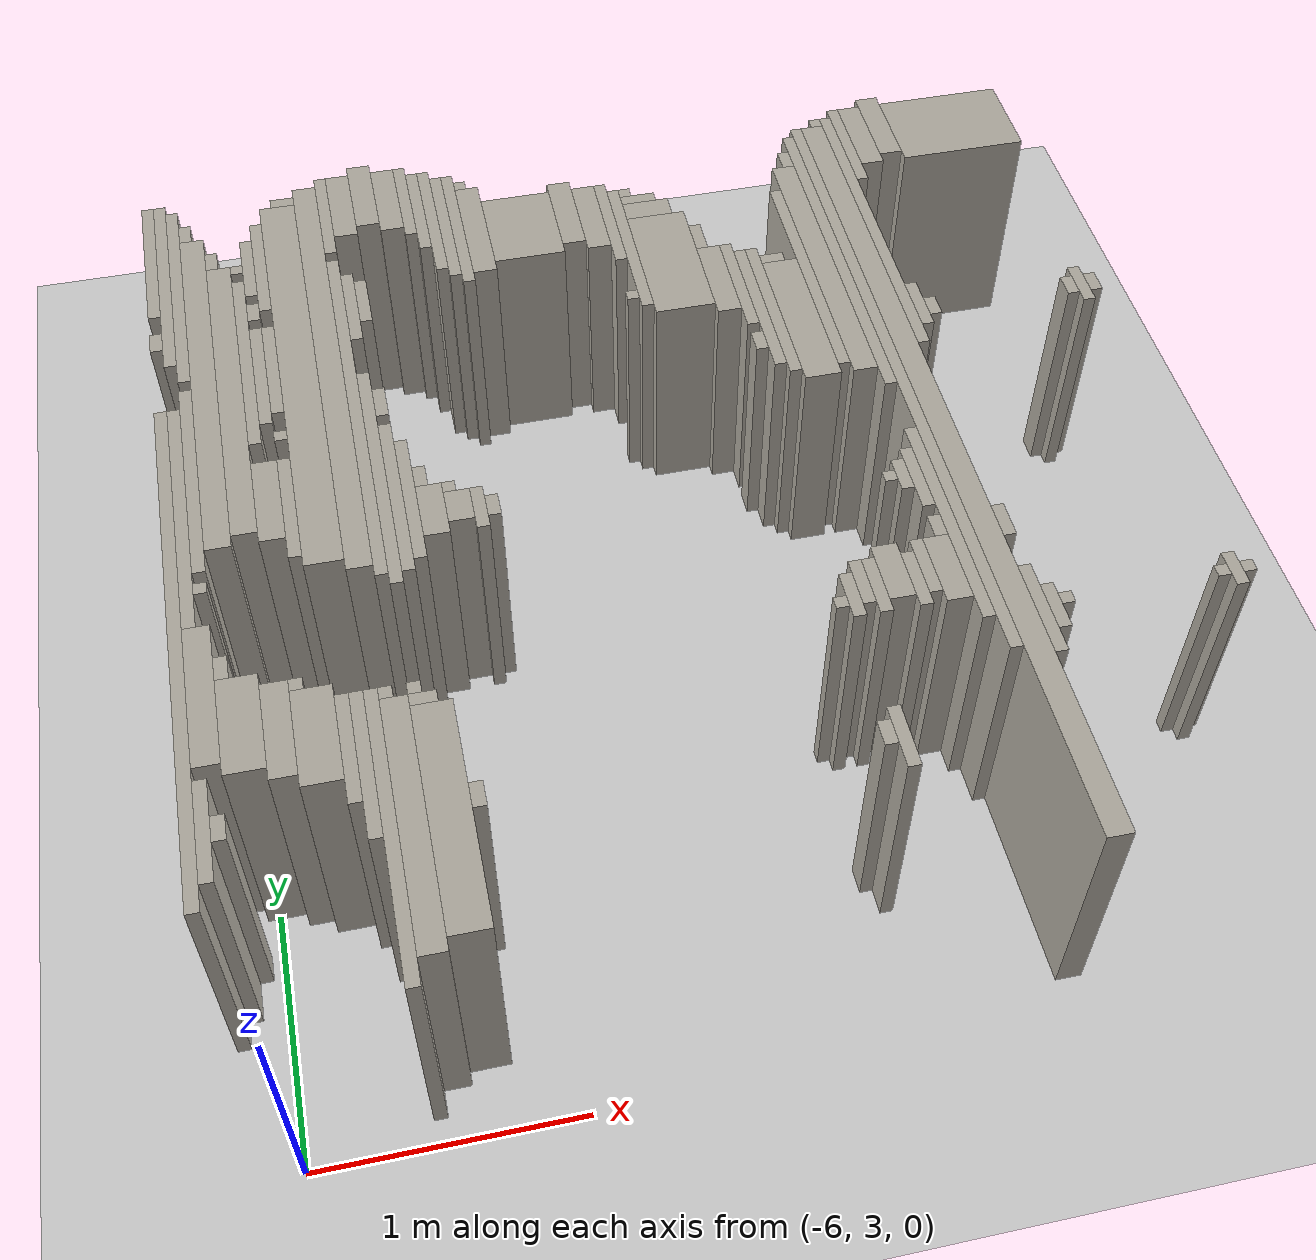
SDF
<sdf version="1.6">
 <world name="fr079_office">
  <include><uri>model://sun</uri></include>
  <include><uri>model://ground_plane</uri></include>
  <model name="fr079_office_walls">
   <static>true</static>
   <link name="w2423">
    <pose>-5.523 3.669 0.500 0 0 0</pose>
    <collision name="c"><geometry><box><size>0.050 1.150 1.000</size></box></geometry></collision>
    <visual name="v">
     <geometry><box><size>0.050 1.150 1.000</size></box></geometry>
     <material><ambient>0.68 0.66 0.62 1</ambient><diffuse>0.68 0.66 0.62 1</diffuse></material>
    </visual>
   </link>
   <link name="w2444">
    <pose>-3.198 5.044 0.500 0 0 0</pose>
    <collision name="c"><geometry><box><size>0.100 3.800 1.000</size></box></geometry></collision>
    <visual name="v">
     <geometry><box><size>0.100 3.800 1.000</size></box></geometry>
     <material><ambient>0.68 0.66 0.62 1</ambient><diffuse>0.68 0.66 0.62 1</diffuse></material>
    </visual>
   </link>
   <link name="w2455">
    <pose>-5.448 3.694 0.500 0 0 0</pose>
    <collision name="c"><geometry><box><size>0.100 1.000 1.000</size></box></geometry></collision>
    <visual name="v">
     <geometry><box><size>0.100 1.000 1.000</size></box></geometry>
     <material><ambient>0.68 0.66 0.62 1</ambient><diffuse>0.68 0.66 0.62 1</diffuse></material>
    </visual>
   </link>
   <link name="w2472">
    <pose>-5.323 3.694 0.500 0 0 0</pose>
    <collision name="c"><geometry><box><size>0.150 0.900 1.000</size></box></geometry></collision>
    <visual name="v">
     <geometry><box><size>0.150 0.900 1.000</size></box></geometry>
     <material><ambient>0.68 0.66 0.62 1</ambient><diffuse>0.68 0.66 0.62 1</diffuse></material>
    </visual>
   </link>
   <link name="w2527">
    <pose>-6.173 4.619 0.500 0 0 0</pose>
    <collision name="c"><geometry><box><size>0.050 2.250 1.000</size></box></geometry></collision>
    <visual name="v">
     <geometry><box><size>0.050 2.250 1.000</size></box></geometry>
     <material><ambient>0.68 0.66 0.62 1</ambient><diffuse>0.68 0.66 0.62 1</diffuse></material>
    </visual>
   </link>
   <link name="w2538">
    <pose>-3.773 3.669 0.500 0 0 0</pose>
    <collision name="c"><geometry><box><size>0.050 0.250 1.000</size></box></geometry></collision>
    <visual name="v">
     <geometry><box><size>0.050 0.250 1.000</size></box></geometry>
     <material><ambient>0.68 0.66 0.62 1</ambient><diffuse>0.68 0.66 0.62 1</diffuse></material>
    </visual>
   </link>
   <link name="w2544">
    <pose>-6.123 3.794 0.500 0 0 0</pose>
    <collision name="c"><geometry><box><size>0.050 0.400 1.000</size></box></geometry></collision>
    <visual name="v">
     <geometry><box><size>0.050 0.400 1.000</size></box></geometry>
     <material><ambient>0.68 0.66 0.62 1</ambient><diffuse>0.68 0.66 0.62 1</diffuse></material>
    </visual>
   </link>
   <link name="w2551">
    <pose>-5.573 3.944 0.500 0 0 0</pose>
    <collision name="c"><geometry><box><size>0.050 0.600 1.000</size></box></geometry></collision>
    <visual name="v">
     <geometry><box><size>0.050 0.600 1.000</size></box></geometry>
     <material><ambient>0.68 0.66 0.62 1</ambient><diffuse>0.68 0.66 0.62 1</diffuse></material>
    </visual>
   </link>
   <link name="w2552">
    <pose>-3.823 3.694 0.500 0 0 0</pose>
    <collision name="c"><geometry><box><size>0.050 0.100 1.000</size></box></geometry></collision>
    <visual name="v">
     <geometry><box><size>0.050 0.100 1.000</size></box></geometry>
     <material><ambient>0.68 0.66 0.62 1</ambient><diffuse>0.68 0.66 0.62 1</diffuse></material>
    </visual>
   </link>
   <link name="w2560">
    <pose>-5.223 3.744 0.500 0 0 0</pose>
    <collision name="c"><geometry><box><size>0.050 0.100 1.000</size></box></geometry></collision>
    <visual name="v">
     <geometry><box><size>0.050 0.100 1.000</size></box></geometry>
     <material><ambient>0.68 0.66 0.62 1</ambient><diffuse>0.68 0.66 0.62 1</diffuse></material>
    </visual>
   </link>
   <link name="w2566">
    <pose>-6.073 3.794 0.500 0 0 0</pose>
    <collision name="c"><geometry><box><size>0.050 0.100 1.000</size></box></geometry></collision>
    <visual name="v">
     <geometry><box><size>0.050 0.100 1.000</size></box></geometry>
     <material><ambient>0.68 0.66 0.62 1</ambient><diffuse>0.68 0.66 0.62 1</diffuse></material>
    </visual>
   </link>
   <link name="w2574">
    <pose>-5.623 4.019 0.500 0 0 0</pose>
    <collision name="c"><geometry><box><size>0.050 0.450 1.000</size></box></geometry></collision>
    <visual name="v">
     <geometry><box><size>0.050 0.450 1.000</size></box></geometry>
     <material><ambient>0.68 0.66 0.62 1</ambient><diffuse>0.68 0.66 0.62 1</diffuse></material>
    </visual>
   </link>
   <link name="w2591">
    <pose>-5.723 4.094 0.500 0 0 0</pose>
    <collision name="c"><geometry><box><size>0.150 0.400 1.000</size></box></geometry></collision>
    <visual name="v">
     <geometry><box><size>0.150 0.400 1.000</size></box></geometry>
     <material><ambient>0.68 0.66 0.62 1</ambient><diffuse>0.68 0.66 0.62 1</diffuse></material>
    </visual>
   </link>
   <link name="w2592">
    <pose>-3.123 4.094 0.500 0 0 0</pose>
    <collision name="c"><geometry><box><size>0.050 0.400 1.000</size></box></geometry></collision>
    <visual name="v">
     <geometry><box><size>0.050 0.400 1.000</size></box></geometry>
     <material><ambient>0.68 0.66 0.62 1</ambient><diffuse>0.68 0.66 0.62 1</diffuse></material>
    </visual>
   </link>
   <link name="w2602">
    <pose>-5.848 4.144 0.500 0 0 0</pose>
    <collision name="c"><geometry><box><size>0.100 0.400 1.000</size></box></geometry></collision>
    <visual name="v">
     <geometry><box><size>0.100 0.400 1.000</size></box></geometry>
     <material><ambient>0.68 0.66 0.62 1</ambient><diffuse>0.68 0.66 0.62 1</diffuse></material>
    </visual>
   </link>
   <link name="w2603">
    <pose>-3.273 5.444 0.500 0 0 0</pose>
    <collision name="c"><geometry><box><size>0.050 3.000 1.000</size></box></geometry></collision>
    <visual name="v">
     <geometry><box><size>0.050 3.000 1.000</size></box></geometry>
     <material><ambient>0.68 0.66 0.62 1</ambient><diffuse>0.68 0.66 0.62 1</diffuse></material>
    </visual>
   </link>
   <link name="w2611">
    <pose>-5.973 4.194 0.500 0 0 0</pose>
    <collision name="c"><geometry><box><size>0.150 0.400 1.000</size></box></geometry></collision>
    <visual name="v">
     <geometry><box><size>0.150 0.400 1.000</size></box></geometry>
     <material><ambient>0.68 0.66 0.62 1</ambient><diffuse>0.68 0.66 0.62 1</diffuse></material>
    </visual>
   </link>
   <link name="w2612">
    <pose>-3.073 4.094 0.500 0 0 0</pose>
    <collision name="c"><geometry><box><size>0.050 0.200 1.000</size></box></geometry></collision>
    <visual name="v">
     <geometry><box><size>0.050 0.200 1.000</size></box></geometry>
     <material><ambient>0.68 0.66 0.62 1</ambient><diffuse>0.68 0.66 0.62 1</diffuse></material>
    </visual>
   </link>
   <link name="w2622">
    <pose>-6.098 4.344 0.500 0 0 0</pose>
    <collision name="c"><geometry><box><size>0.100 0.600 1.000</size></box></geometry></collision>
    <visual name="v">
     <geometry><box><size>0.100 0.600 1.000</size></box></geometry>
     <material><ambient>0.68 0.66 0.62 1</ambient><diffuse>0.68 0.66 0.62 1</diffuse></material>
    </visual>
   </link>
   <link name="w2623">
    <pose>-2.373 4.119 0.500 0 0 0</pose>
    <collision name="c"><geometry><box><size>0.050 0.150 1.000</size></box></geometry></collision>
    <visual name="v">
     <geometry><box><size>0.050 0.150 1.000</size></box></geometry>
     <material><ambient>0.68 0.66 0.62 1</ambient><diffuse>0.68 0.66 0.62 1</diffuse></material>
    </visual>
   </link>
   <link name="w2633">
    <pose>-3.323 4.569 0.500 0 0 0</pose>
    <collision name="c"><geometry><box><size>0.050 0.950 1.000</size></box></geometry></collision>
    <visual name="v">
     <geometry><box><size>0.050 0.950 1.000</size></box></geometry>
     <material><ambient>0.68 0.66 0.62 1</ambient><diffuse>0.68 0.66 0.62 1</diffuse></material>
    </visual>
   </link>
   <link name="w2634">
    <pose>-3.023 4.119 0.500 0 0 0</pose>
    <collision name="c"><geometry><box><size>0.050 0.050 1.000</size></box></geometry></collision>
    <visual name="v">
     <geometry><box><size>0.050 0.050 1.000</size></box></geometry>
     <material><ambient>0.68 0.66 0.62 1</ambient><diffuse>0.68 0.66 0.62 1</diffuse></material>
    </visual>
   </link>
   <link name="w2635">
    <pose>-2.423 4.119 0.500 0 0 0</pose>
    <collision name="c"><geometry><box><size>0.050 0.050 1.000</size></box></geometry></collision>
    <visual name="v">
     <geometry><box><size>0.050 0.050 1.000</size></box></geometry>
     <material><ambient>0.68 0.66 0.62 1</ambient><diffuse>0.68 0.66 0.62 1</diffuse></material>
    </visual>
   </link>
   <link name="w2636">
    <pose>-2.323 4.119 0.500 0 0 0</pose>
    <collision name="c"><geometry><box><size>0.050 0.050 1.000</size></box></geometry></collision>
    <visual name="v">
     <geometry><box><size>0.050 0.050 1.000</size></box></geometry>
     <material><ambient>0.68 0.66 0.62 1</ambient><diffuse>0.68 0.66 0.62 1</diffuse></material>
    </visual>
   </link>
   <link name="w2651">
    <pose>-5.348 4.169 0.500 0 0 0</pose>
    <collision name="c"><geometry><box><size>0.100 0.050 1.000</size></box></geometry></collision>
    <visual name="v">
     <geometry><box><size>0.100 0.050 1.000</size></box></geometry>
     <material><ambient>0.68 0.66 0.62 1</ambient><diffuse>0.68 0.66 0.62 1</diffuse></material>
    </visual>
   </link>
   <link name="w2661">
    <pose>-5.473 4.219 0.500 0 0 0</pose>
    <collision name="c"><geometry><box><size>0.050 0.050 1.000</size></box></geometry></collision>
    <visual name="v">
     <geometry><box><size>0.050 0.050 1.000</size></box></geometry>
     <material><ambient>0.68 0.66 0.62 1</ambient><diffuse>0.68 0.66 0.62 1</diffuse></material>
    </visual>
   </link>
   <link name="w2662">
    <pose>-5.373 4.219 0.500 0 0 0</pose>
    <collision name="c"><geometry><box><size>0.050 0.050 1.000</size></box></geometry></collision>
    <visual name="v">
     <geometry><box><size>0.050 0.050 1.000</size></box></geometry>
     <material><ambient>0.68 0.66 0.62 1</ambient><diffuse>0.68 0.66 0.62 1</diffuse></material>
    </visual>
   </link>
   <link name="w2663">
    <pose>-3.773 4.294 0.500 0 0 0</pose>
    <collision name="c"><geometry><box><size>0.050 0.200 1.000</size></box></geometry></collision>
    <visual name="v">
     <geometry><box><size>0.050 0.200 1.000</size></box></geometry>
     <material><ambient>0.68 0.66 0.62 1</ambient><diffuse>0.68 0.66 0.62 1</diffuse></material>
    </visual>
   </link>
   <link name="w2664">
    <pose>-3.673 4.319 0.500 0 0 0</pose>
    <collision name="c"><geometry><box><size>0.050 0.250 1.000</size></box></geometry></collision>
    <visual name="v">
     <geometry><box><size>0.050 0.250 1.000</size></box></geometry>
     <material><ambient>0.68 0.66 0.62 1</ambient><diffuse>0.68 0.66 0.62 1</diffuse></material>
    </visual>
   </link>
   <link name="w2665">
    <pose>-3.523 4.319 0.500 0 0 0</pose>
    <collision name="c"><geometry><box><size>0.050 0.250 1.000</size></box></geometry></collision>
    <visual name="v">
     <geometry><box><size>0.050 0.250 1.000</size></box></geometry>
     <material><ambient>0.68 0.66 0.62 1</ambient><diffuse>0.68 0.66 0.62 1</diffuse></material>
    </visual>
   </link>
   <link name="w2666">
    <pose>-3.398 4.344 0.500 0 0 0</pose>
    <collision name="c"><geometry><box><size>0.100 0.300 1.000</size></box></geometry></collision>
    <visual name="v">
     <geometry><box><size>0.100 0.300 1.000</size></box></geometry>
     <material><ambient>0.68 0.66 0.62 1</ambient><diffuse>0.68 0.66 0.62 1</diffuse></material>
    </visual>
   </link>
   <link name="w2674">
    <pose>-3.823 4.269 0.500 0 0 0</pose>
    <collision name="c"><geometry><box><size>0.050 0.050 1.000</size></box></geometry></collision>
    <visual name="v">
     <geometry><box><size>0.050 0.050 1.000</size></box></geometry>
     <material><ambient>0.68 0.66 0.62 1</ambient><diffuse>0.68 0.66 0.62 1</diffuse></material>
    </visual>
   </link>
   <link name="w2675">
    <pose>-3.723 4.344 0.500 0 0 0</pose>
    <collision name="c"><geometry><box><size>0.050 0.200 1.000</size></box></geometry></collision>
    <visual name="v">
     <geometry><box><size>0.050 0.200 1.000</size></box></geometry>
     <material><ambient>0.68 0.66 0.62 1</ambient><diffuse>0.68 0.66 0.62 1</diffuse></material>
    </visual>
   </link>
   <link name="w2676">
    <pose>-3.598 4.369 0.500 0 0 0</pose>
    <collision name="c"><geometry><box><size>0.100 0.250 1.000</size></box></geometry></collision>
    <visual name="v">
     <geometry><box><size>0.100 0.250 1.000</size></box></geometry>
     <material><ambient>0.68 0.66 0.62 1</ambient><diffuse>0.68 0.66 0.62 1</diffuse></material>
    </visual>
   </link>
   <link name="w2677">
    <pose>-3.473 4.369 0.500 0 0 0</pose>
    <collision name="c"><geometry><box><size>0.050 0.250 1.000</size></box></geometry></collision>
    <visual name="v">
     <geometry><box><size>0.050 0.250 1.000</size></box></geometry>
     <material><ambient>0.68 0.66 0.62 1</ambient><diffuse>0.68 0.66 0.62 1</diffuse></material>
    </visual>
   </link>
   <link name="w2682">
    <pose>-5.773 4.319 0.500 0 0 0</pose>
    <collision name="c"><geometry><box><size>0.050 0.050 1.000</size></box></geometry></collision>
    <visual name="v">
     <geometry><box><size>0.050 0.050 1.000</size></box></geometry>
     <material><ambient>0.68 0.66 0.62 1</ambient><diffuse>0.68 0.66 0.62 1</diffuse></material>
    </visual>
   </link>
   <link name="w2697">
    <pose>-6.023 4.444 0.500 0 0 0</pose>
    <collision name="c"><geometry><box><size>0.050 0.100 1.000</size></box></geometry></collision>
    <visual name="v">
     <geometry><box><size>0.050 0.100 1.000</size></box></geometry>
     <material><ambient>0.68 0.66 0.62 1</ambient><diffuse>0.68 0.66 0.62 1</diffuse></material>
    </visual>
   </link>
   <link name="w2704">
    <pose>-3.123 4.519 0.500 0 0 0</pose>
    <collision name="c"><geometry><box><size>0.050 0.150 1.000</size></box></geometry></collision>
    <visual name="v">
     <geometry><box><size>0.050 0.150 1.000</size></box></geometry>
     <material><ambient>0.68 0.66 0.62 1</ambient><diffuse>0.68 0.66 0.62 1</diffuse></material>
    </visual>
   </link>
   <link name="w2712">
    <pose>-3.373 4.544 0.500 0 0 0</pose>
    <collision name="c"><geometry><box><size>0.050 0.100 1.000</size></box></geometry></collision>
    <visual name="v">
     <geometry><box><size>0.050 0.100 1.000</size></box></geometry>
     <material><ambient>0.68 0.66 0.62 1</ambient><diffuse>0.68 0.66 0.62 1</diffuse></material>
    </visual>
   </link>
   <link name="w2740">
    <pose>-6.123 5.194 0.500 0 0 0</pose>
    <collision name="c"><geometry><box><size>0.050 1.100 1.000</size></box></geometry></collision>
    <visual name="v">
     <geometry><box><size>0.050 1.100 1.000</size></box></geometry>
     <material><ambient>0.68 0.66 0.62 1</ambient><diffuse>0.68 0.66 0.62 1</diffuse></material>
    </visual>
   </link>
   <link name="w2741">
    <pose>-3.373 4.794 0.500 0 0 0</pose>
    <collision name="c"><geometry><box><size>0.050 0.300 1.000</size></box></geometry></collision>
    <visual name="v">
     <geometry><box><size>0.050 0.300 1.000</size></box></geometry>
     <material><ambient>0.68 0.66 0.62 1</ambient><diffuse>0.68 0.66 0.62 1</diffuse></material>
    </visual>
   </link>
   <link name="w2748">
    <pose>-5.373 5.244 0.500 0 0 0</pose>
    <collision name="c"><geometry><box><size>0.050 1.100 1.000</size></box></geometry></collision>
    <visual name="v">
     <geometry><box><size>0.050 1.100 1.000</size></box></geometry>
     <material><ambient>0.68 0.66 0.62 1</ambient><diffuse>0.68 0.66 0.62 1</diffuse></material>
    </visual>
   </link>
   <link name="w2753">
    <pose>-5.423 5.619 0.500 0 0 0</pose>
    <collision name="c"><geometry><box><size>0.050 1.750 1.000</size></box></geometry></collision>
    <visual name="v">
     <geometry><box><size>0.050 1.750 1.000</size></box></geometry>
     <material><ambient>0.68 0.66 0.62 1</ambient><diffuse>0.68 0.66 0.62 1</diffuse></material>
    </visual>
   </link>
   <link name="w2754">
    <pose>-5.323 5.119 0.500 0 0 0</pose>
    <collision name="c"><geometry><box><size>0.050 0.750 1.000</size></box></geometry></collision>
    <visual name="v">
     <geometry><box><size>0.050 0.750 1.000</size></box></geometry>
     <material><ambient>0.68 0.66 0.62 1</ambient><diffuse>0.68 0.66 0.62 1</diffuse></material>
    </visual>
   </link>
   <link name="w2755">
    <pose>-3.423 4.819 0.500 0 0 0</pose>
    <collision name="c"><geometry><box><size>0.050 0.150 1.000</size></box></geometry></collision>
    <visual name="v">
     <geometry><box><size>0.050 0.150 1.000</size></box></geometry>
     <material><ambient>0.68 0.66 0.62 1</ambient><diffuse>0.68 0.66 0.62 1</diffuse></material>
    </visual>
   </link>
   <link name="w2758">
    <pose>-6.073 4.819 0.500 0 0 0</pose>
    <collision name="c"><geometry><box><size>0.050 0.050 1.000</size></box></geometry></collision>
    <visual name="v">
     <geometry><box><size>0.050 0.050 1.000</size></box></geometry>
     <material><ambient>0.68 0.66 0.62 1</ambient><diffuse>0.68 0.66 0.62 1</diffuse></material>
    </visual>
   </link>
   <link name="w2759">
    <pose>-5.498 5.894 0.500 0 0 0</pose>
    <collision name="c"><geometry><box><size>0.100 2.200 1.000</size></box></geometry></collision>
    <visual name="v">
     <geometry><box><size>0.100 2.200 1.000</size></box></geometry>
     <material><ambient>0.68 0.66 0.62 1</ambient><diffuse>0.68 0.66 0.62 1</diffuse></material>
    </visual>
   </link>
   <link name="w2760">
    <pose>-5.273 5.094 0.500 0 0 0</pose>
    <collision name="c"><geometry><box><size>0.050 0.600 1.000</size></box></geometry></collision>
    <visual name="v">
     <geometry><box><size>0.050 0.600 1.000</size></box></geometry>
     <material><ambient>0.68 0.66 0.62 1</ambient><diffuse>0.68 0.66 0.62 1</diffuse></material>
    </visual>
   </link>
   <link name="w2761">
    <pose>-3.473 4.819 0.500 0 0 0</pose>
    <collision name="c"><geometry><box><size>0.050 0.050 1.000</size></box></geometry></collision>
    <visual name="v">
     <geometry><box><size>0.050 0.050 1.000</size></box></geometry>
     <material><ambient>0.68 0.66 0.62 1</ambient><diffuse>0.68 0.66 0.62 1</diffuse></material>
    </visual>
   </link>
   <link name="w2770">
    <pose>-5.623 5.869 0.500 0 0 0</pose>
    <collision name="c"><geometry><box><size>0.150 2.050 1.000</size></box></geometry></collision>
    <visual name="v">
     <geometry><box><size>0.150 2.050 1.000</size></box></geometry>
     <material><ambient>0.68 0.66 0.62 1</ambient><diffuse>0.68 0.66 0.62 1</diffuse></material>
    </visual>
   </link>
   <link name="w2780">
    <pose>-6.073 5.369 0.500 0 0 0</pose>
    <collision name="c"><geometry><box><size>0.050 0.950 1.000</size></box></geometry></collision>
    <visual name="v">
     <geometry><box><size>0.050 0.950 1.000</size></box></geometry>
     <material><ambient>0.68 0.66 0.62 1</ambient><diffuse>0.68 0.66 0.62 1</diffuse></material>
    </visual>
   </link>
   <link name="w2781">
    <pose>-5.723 5.144 0.500 0 0 0</pose>
    <collision name="c"><geometry><box><size>0.050 0.500 1.000</size></box></geometry></collision>
    <visual name="v">
     <geometry><box><size>0.050 0.500 1.000</size></box></geometry>
     <material><ambient>0.68 0.66 0.62 1</ambient><diffuse>0.68 0.66 0.62 1</diffuse></material>
    </visual>
   </link>
   <link name="w2782">
    <pose>-5.198 5.019 0.500 0 0 0</pose>
    <collision name="c"><geometry><box><size>0.100 0.250 1.000</size></box></geometry></collision>
    <visual name="v">
     <geometry><box><size>0.100 0.250 1.000</size></box></geometry>
     <material><ambient>0.68 0.66 0.62 1</ambient><diffuse>0.68 0.66 0.62 1</diffuse></material>
    </visual>
   </link>
   <link name="w2783">
    <pose>-5.023 4.994 0.500 0 0 0</pose>
    <collision name="c"><geometry><box><size>0.050 0.200 1.000</size></box></geometry></collision>
    <visual name="v">
     <geometry><box><size>0.050 0.200 1.000</size></box></geometry>
     <material><ambient>0.68 0.66 0.62 1</ambient><diffuse>0.68 0.66 0.62 1</diffuse></material>
    </visual>
   </link>
   <link name="w2797">
    <pose>-5.098 5.019 0.500 0 0 0</pose>
    <collision name="c"><geometry><box><size>0.100 0.150 1.000</size></box></geometry></collision>
    <visual name="v">
     <geometry><box><size>0.100 0.150 1.000</size></box></geometry>
     <material><ambient>0.68 0.66 0.62 1</ambient><diffuse>0.68 0.66 0.62 1</diffuse></material>
    </visual>
   </link>
   <link name="w2798">
    <pose>-4.973 4.994 0.500 0 0 0</pose>
    <collision name="c"><geometry><box><size>0.050 0.100 1.000</size></box></geometry></collision>
    <visual name="v">
     <geometry><box><size>0.050 0.100 1.000</size></box></geometry>
     <material><ambient>0.68 0.66 0.62 1</ambient><diffuse>0.68 0.66 0.62 1</diffuse></material>
    </visual>
   </link>
   <link name="w2806">
    <pose>-5.998 5.869 0.500 0 0 0</pose>
    <collision name="c"><geometry><box><size>0.100 1.750 1.000</size></box></geometry></collision>
    <visual name="v">
     <geometry><box><size>0.100 1.750 1.000</size></box></geometry>
     <material><ambient>0.68 0.66 0.62 1</ambient><diffuse>0.68 0.66 0.62 1</diffuse></material>
    </visual>
   </link>
   <link name="w2807">
    <pose>-5.798 5.194 0.500 0 0 0</pose>
    <collision name="c"><geometry><box><size>0.100 0.400 1.000</size></box></geometry></collision>
    <visual name="v">
     <geometry><box><size>0.100 0.400 1.000</size></box></geometry>
     <material><ambient>0.68 0.66 0.62 1</ambient><diffuse>0.68 0.66 0.62 1</diffuse></material>
    </visual>
   </link>
   <link name="w2820">
    <pose>-5.898 5.794 0.500 0 0 0</pose>
    <collision name="c"><geometry><box><size>0.100 1.500 1.000</size></box></geometry></collision>
    <visual name="v">
     <geometry><box><size>0.100 1.500 1.000</size></box></geometry>
     <material><ambient>0.68 0.66 0.62 1</ambient><diffuse>0.68 0.66 0.62 1</diffuse></material>
    </visual>
   </link>
   <link name="w2826">
    <pose>-5.123 5.119 0.500 0 0 0</pose>
    <collision name="c"><geometry><box><size>0.050 0.050 1.000</size></box></geometry></collision>
    <visual name="v">
     <geometry><box><size>0.050 0.050 1.000</size></box></geometry>
     <material><ambient>0.68 0.66 0.62 1</ambient><diffuse>0.68 0.66 0.62 1</diffuse></material>
    </visual>
   </link>
   <link name="w2836">
    <pose>-5.223 5.194 0.500 0 0 0</pose>
    <collision name="c"><geometry><box><size>0.050 0.100 1.000</size></box></geometry></collision>
    <visual name="v">
     <geometry><box><size>0.050 0.100 1.000</size></box></geometry>
     <material><ambient>0.68 0.66 0.62 1</ambient><diffuse>0.68 0.66 0.62 1</diffuse></material>
    </visual>
   </link>
   <link name="w2869">
    <pose>-3.323 6.094 0.500 0 0 0</pose>
    <collision name="c"><geometry><box><size>0.050 1.600 1.000</size></box></geometry></collision>
    <visual name="v">
     <geometry><box><size>0.050 1.600 1.000</size></box></geometry>
     <material><ambient>0.68 0.66 0.62 1</ambient><diffuse>0.68 0.66 0.62 1</diffuse></material>
    </visual>
   </link>
   <link name="w2899">
    <pose>-3.573 5.744 0.500 0 0 0</pose>
    <collision name="c"><geometry><box><size>0.150 0.700 1.000</size></box></geometry></collision>
    <visual name="v">
     <geometry><box><size>0.150 0.700 1.000</size></box></geometry>
     <material><ambient>0.68 0.66 0.62 1</ambient><diffuse>0.68 0.66 0.62 1</diffuse></material>
    </visual>
   </link>
   <link name="w2900">
    <pose>-3.398 6.044 0.500 0 0 0</pose>
    <collision name="c"><geometry><box><size>0.100 1.300 1.000</size></box></geometry></collision>
    <visual name="v">
     <geometry><box><size>0.100 1.300 1.000</size></box></geometry>
     <material><ambient>0.68 0.66 0.62 1</ambient><diffuse>0.68 0.66 0.62 1</diffuse></material>
    </visual>
   </link>
   <link name="w2906">
    <pose>-3.673 5.819 0.500 0 0 0</pose>
    <collision name="c"><geometry><box><size>0.050 0.750 1.000</size></box></geometry></collision>
    <visual name="v">
     <geometry><box><size>0.050 0.750 1.000</size></box></geometry>
     <material><ambient>0.68 0.66 0.62 1</ambient><diffuse>0.68 0.66 0.62 1</diffuse></material>
    </visual>
   </link>
   <link name="w2907">
    <pose>-3.473 5.994 0.500 0 0 0</pose>
    <collision name="c"><geometry><box><size>0.050 1.100 1.000</size></box></geometry></collision>
    <visual name="v">
     <geometry><box><size>0.050 1.100 1.000</size></box></geometry>
     <material><ambient>0.68 0.66 0.62 1</ambient><diffuse>0.68 0.66 0.62 1</diffuse></material>
    </visual>
   </link>
   <link name="w2919">
    <pose>-5.823 5.969 0.500 0 0 0</pose>
    <collision name="c"><geometry><box><size>0.050 0.950 1.000</size></box></geometry></collision>
    <visual name="v">
     <geometry><box><size>0.050 0.950 1.000</size></box></geometry>
     <material><ambient>0.68 0.66 0.62 1</ambient><diffuse>0.68 0.66 0.62 1</diffuse></material>
    </visual>
   </link>
   <link name="w2920">
    <pose>-5.723 5.519 0.500 0 0 0</pose>
    <collision name="c"><geometry><box><size>0.050 0.050 1.000</size></box></geometry></collision>
    <visual name="v">
     <geometry><box><size>0.050 0.050 1.000</size></box></geometry>
     <material><ambient>0.68 0.66 0.62 1</ambient><diffuse>0.68 0.66 0.62 1</diffuse></material>
    </visual>
   </link>
   <link name="w2921">
    <pose>-3.723 5.844 0.500 0 0 0</pose>
    <collision name="c"><geometry><box><size>0.050 0.700 1.000</size></box></geometry></collision>
    <visual name="v">
     <geometry><box><size>0.050 0.700 1.000</size></box></geometry>
     <material><ambient>0.68 0.66 0.62 1</ambient><diffuse>0.68 0.66 0.62 1</diffuse></material>
    </visual>
   </link>
   <link name="w2922">
    <pose>-3.123 6.244 0.500 0 0 0</pose>
    <collision name="c"><geometry><box><size>0.050 1.500 1.000</size></box></geometry></collision>
    <visual name="v">
     <geometry><box><size>0.050 1.500 1.000</size></box></geometry>
     <material><ambient>0.68 0.66 0.62 1</ambient><diffuse>0.68 0.66 0.62 1</diffuse></material>
    </visual>
   </link>
   <link name="w2932">
    <pose>-5.323 5.619 0.500 0 0 0</pose>
    <collision name="c"><geometry><box><size>0.050 0.150 1.000</size></box></geometry></collision>
    <visual name="v">
     <geometry><box><size>0.050 0.150 1.000</size></box></geometry>
     <material><ambient>0.68 0.66 0.62 1</ambient><diffuse>0.68 0.66 0.62 1</diffuse></material>
    </visual>
   </link>
   <link name="w2942">
    <pose>-5.773 5.869 0.500 0 0 0</pose>
    <collision name="c"><geometry><box><size>0.050 0.550 1.000</size></box></geometry></collision>
    <visual name="v">
     <geometry><box><size>0.050 0.550 1.000</size></box></geometry>
     <material><ambient>0.68 0.66 0.62 1</ambient><diffuse>0.68 0.66 0.62 1</diffuse></material>
    </visual>
   </link>
   <link name="w2943">
    <pose>-3.773 5.644 0.500 0 0 0</pose>
    <collision name="c"><geometry><box><size>0.050 0.100 1.000</size></box></geometry></collision>
    <visual name="v">
     <geometry><box><size>0.050 0.100 1.000</size></box></geometry>
     <material><ambient>0.68 0.66 0.62 1</ambient><diffuse>0.68 0.66 0.62 1</diffuse></material>
    </visual>
   </link>
   <link name="w2944">
    <pose>-3.073 5.719 0.500 0 0 0</pose>
    <collision name="c"><geometry><box><size>0.050 0.250 1.000</size></box></geometry></collision>
    <visual name="v">
     <geometry><box><size>0.050 0.250 1.000</size></box></geometry>
     <material><ambient>0.68 0.66 0.62 1</ambient><diffuse>0.68 0.66 0.62 1</diffuse></material>
    </visual>
   </link>
   <link name="w2945">
    <pose>-2.373 5.694 0.500 0 0 0</pose>
    <collision name="c"><geometry><box><size>0.050 0.200 1.000</size></box></geometry></collision>
    <visual name="v">
     <geometry><box><size>0.050 0.200 1.000</size></box></geometry>
     <material><ambient>0.68 0.66 0.62 1</ambient><diffuse>0.68 0.66 0.62 1</diffuse></material>
    </visual>
   </link>
   <link name="w2960">
    <pose>-5.723 5.894 0.500 0 0 0</pose>
    <collision name="c"><geometry><box><size>0.050 0.500 1.000</size></box></geometry></collision>
    <visual name="v">
     <geometry><box><size>0.050 0.500 1.000</size></box></geometry>
     <material><ambient>0.68 0.66 0.62 1</ambient><diffuse>0.68 0.66 0.62 1</diffuse></material>
    </visual>
   </link>
   <link name="w2961">
    <pose>-3.023 5.694 0.500 0 0 0</pose>
    <collision name="c"><geometry><box><size>0.050 0.100 1.000</size></box></geometry></collision>
    <visual name="v">
     <geometry><box><size>0.050 0.100 1.000</size></box></geometry>
     <material><ambient>0.68 0.66 0.62 1</ambient><diffuse>0.68 0.66 0.62 1</diffuse></material>
    </visual>
   </link>
   <link name="w2962">
    <pose>-2.423 5.694 0.500 0 0 0</pose>
    <collision name="c"><geometry><box><size>0.050 0.100 1.000</size></box></geometry></collision>
    <visual name="v">
     <geometry><box><size>0.050 0.100 1.000</size></box></geometry>
     <material><ambient>0.68 0.66 0.62 1</ambient><diffuse>0.68 0.66 0.62 1</diffuse></material>
    </visual>
   </link>
   <link name="w2963">
    <pose>-2.323 5.694 0.500 0 0 0</pose>
    <collision name="c"><geometry><box><size>0.050 0.100 1.000</size></box></geometry></collision>
    <visual name="v">
     <geometry><box><size>0.050 0.100 1.000</size></box></geometry>
     <material><ambient>0.68 0.66 0.62 1</ambient><diffuse>0.68 0.66 0.62 1</diffuse></material>
    </visual>
   </link>
   <link name="w2980">
    <pose>-3.773 5.994 0.500 0 0 0</pose>
    <collision name="c"><geometry><box><size>0.050 0.500 1.000</size></box></geometry></collision>
    <visual name="v">
     <geometry><box><size>0.050 0.500 1.000</size></box></geometry>
     <material><ambient>0.68 0.66 0.62 1</ambient><diffuse>0.68 0.66 0.62 1</diffuse></material>
    </visual>
   </link>
   <link name="w2999">
    <pose>-3.848 6.044 0.500 0 0 0</pose>
    <collision name="c"><geometry><box><size>0.100 0.400 1.000</size></box></geometry></collision>
    <visual name="v">
     <geometry><box><size>0.100 0.400 1.000</size></box></geometry>
     <material><ambient>0.68 0.66 0.62 1</ambient><diffuse>0.68 0.66 0.62 1</diffuse></material>
    </visual>
   </link>
   <link name="w3006">
    <pose>-6.073 6.419 0.500 0 0 0</pose>
    <collision name="c"><geometry><box><size>0.050 1.050 1.000</size></box></geometry></collision>
    <visual name="v">
     <geometry><box><size>0.050 1.050 1.000</size></box></geometry>
     <material><ambient>0.68 0.66 0.62 1</ambient><diffuse>0.68 0.66 0.62 1</diffuse></material>
    </visual>
   </link>
   <link name="w3007">
    <pose>-4.023 6.194 0.500 0 0 0</pose>
    <collision name="c"><geometry><box><size>0.250 0.600 1.000</size></box></geometry></collision>
    <visual name="v">
     <geometry><box><size>0.250 0.600 1.000</size></box></geometry>
     <material><ambient>0.68 0.66 0.62 1</ambient><diffuse>0.68 0.66 0.62 1</diffuse></material>
    </visual>
   </link>
   <link name="w3016">
    <pose>-4.173 6.319 0.500 0 0 0</pose>
    <collision name="c"><geometry><box><size>0.050 0.750 1.000</size></box></geometry></collision>
    <visual name="v">
     <geometry><box><size>0.050 0.750 1.000</size></box></geometry>
     <material><ambient>0.68 0.66 0.62 1</ambient><diffuse>0.68 0.66 0.62 1</diffuse></material>
    </visual>
   </link>
   <link name="w3023">
    <pose>-6.123 6.494 0.500 0 0 0</pose>
    <collision name="c"><geometry><box><size>0.050 1.000 1.000</size></box></geometry></collision>
    <visual name="v">
     <geometry><box><size>0.050 1.000 1.000</size></box></geometry>
     <material><ambient>0.68 0.66 0.62 1</ambient><diffuse>0.68 0.66 0.62 1</diffuse></material>
    </visual>
   </link>
   <link name="w3024">
    <pose>-5.373 6.194 0.500 0 0 0</pose>
    <collision name="c"><geometry><box><size>0.050 0.400 1.000</size></box></geometry></collision>
    <visual name="v">
     <geometry><box><size>0.050 0.400 1.000</size></box></geometry>
     <material><ambient>0.68 0.66 0.62 1</ambient><diffuse>0.68 0.66 0.62 1</diffuse></material>
    </visual>
   </link>
   <link name="w3025">
    <pose>-4.223 6.019 0.500 0 0 0</pose>
    <collision name="c"><geometry><box><size>0.050 0.050 1.000</size></box></geometry></collision>
    <visual name="v">
     <geometry><box><size>0.050 0.050 1.000</size></box></geometry>
     <material><ambient>0.68 0.66 0.62 1</ambient><diffuse>0.68 0.66 0.62 1</diffuse></material>
    </visual>
   </link>
   <link name="w3043">
    <pose>-6.173 6.144 0.500 0 0 0</pose>
    <collision name="c"><geometry><box><size>0.050 0.100 1.000</size></box></geometry></collision>
    <visual name="v">
     <geometry><box><size>0.050 0.100 1.000</size></box></geometry>
     <material><ambient>0.68 0.66 0.62 1</ambient><diffuse>0.68 0.66 0.62 1</diffuse></material>
    </visual>
   </link>
   <link name="w3044">
    <pose>-5.323 6.219 0.500 0 0 0</pose>
    <collision name="c"><geometry><box><size>0.050 0.250 1.000</size></box></geometry></collision>
    <visual name="v">
     <geometry><box><size>0.050 0.250 1.000</size></box></geometry>
     <material><ambient>0.68 0.66 0.62 1</ambient><diffuse>0.68 0.66 0.62 1</diffuse></material>
    </visual>
   </link>
   <link name="w3045">
    <pose>-3.598 6.119 0.500 0 0 0</pose>
    <collision name="c"><geometry><box><size>0.100 0.050 1.000</size></box></geometry></collision>
    <visual name="v">
     <geometry><box><size>0.100 0.050 1.000</size></box></geometry>
     <material><ambient>0.68 0.66 0.62 1</ambient><diffuse>0.68 0.66 0.62 1</diffuse></material>
    </visual>
   </link>
   <link name="w3062">
    <pose>-5.773 6.244 0.500 0 0 0</pose>
    <collision name="c"><geometry><box><size>0.050 0.100 1.000</size></box></geometry></collision>
    <visual name="v">
     <geometry><box><size>0.050 0.100 1.000</size></box></geometry>
     <material><ambient>0.68 0.66 0.62 1</ambient><diffuse>0.68 0.66 0.62 1</diffuse></material>
    </visual>
   </link>
   <link name="w3073">
    <pose>-5.723 6.519 0.500 0 0 0</pose>
    <collision name="c"><geometry><box><size>0.050 0.550 1.000</size></box></geometry></collision>
    <visual name="v">
     <geometry><box><size>0.050 0.550 1.000</size></box></geometry>
     <material><ambient>0.68 0.66 0.62 1</ambient><diffuse>0.68 0.66 0.62 1</diffuse></material>
    </visual>
   </link>
   <link name="w3074">
    <pose>-4.873 6.594 0.500 0 0 0</pose>
    <collision name="c"><geometry><box><size>0.050 0.700 1.000</size></box></geometry></collision>
    <visual name="v">
     <geometry><box><size>0.050 0.700 1.000</size></box></geometry>
     <material><ambient>0.68 0.66 0.62 1</ambient><diffuse>0.68 0.66 0.62 1</diffuse></material>
    </visual>
   </link>
   <link name="w3075">
    <pose>-4.223 6.494 0.500 0 0 0</pose>
    <collision name="c"><geometry><box><size>0.050 0.500 1.000</size></box></geometry></collision>
    <visual name="v">
     <geometry><box><size>0.050 0.500 1.000</size></box></geometry>
     <material><ambient>0.68 0.66 0.62 1</ambient><diffuse>0.68 0.66 0.62 1</diffuse></material>
    </visual>
   </link>
   <link name="w3076">
    <pose>-3.873 6.319 0.500 0 0 0</pose>
    <collision name="c"><geometry><box><size>0.050 0.150 1.000</size></box></geometry></collision>
    <visual name="v">
     <geometry><box><size>0.050 0.150 1.000</size></box></geometry>
     <material><ambient>0.68 0.66 0.62 1</ambient><diffuse>0.68 0.66 0.62 1</diffuse></material>
    </visual>
   </link>
   <link name="w3085">
    <pose>-6.173 6.644 0.500 0 0 0</pose>
    <collision name="c"><geometry><box><size>0.050 0.700 1.000</size></box></geometry></collision>
    <visual name="v">
     <geometry><box><size>0.050 0.700 1.000</size></box></geometry>
     <material><ambient>0.68 0.66 0.62 1</ambient><diffuse>0.68 0.66 0.62 1</diffuse></material>
    </visual>
   </link>
   <link name="w3086">
    <pose>-4.923 6.619 0.500 0 0 0</pose>
    <collision name="c"><geometry><box><size>0.050 0.650 1.000</size></box></geometry></collision>
    <visual name="v">
     <geometry><box><size>0.050 0.650 1.000</size></box></geometry>
     <material><ambient>0.68 0.66 0.62 1</ambient><diffuse>0.68 0.66 0.62 1</diffuse></material>
    </visual>
   </link>
   <link name="w3087">
    <pose>-4.798 6.569 0.500 0 0 0</pose>
    <collision name="c"><geometry><box><size>0.100 0.550 1.000</size></box></geometry></collision>
    <visual name="v">
     <geometry><box><size>0.100 0.550 1.000</size></box></geometry>
     <material><ambient>0.68 0.66 0.62 1</ambient><diffuse>0.68 0.66 0.62 1</diffuse></material>
    </visual>
   </link>
   <link name="w3095">
    <pose>-5.773 6.519 0.500 0 0 0</pose>
    <collision name="c"><geometry><box><size>0.050 0.350 1.000</size></box></geometry></collision>
    <visual name="v">
     <geometry><box><size>0.050 0.350 1.000</size></box></geometry>
     <material><ambient>0.68 0.66 0.62 1</ambient><diffuse>0.68 0.66 0.62 1</diffuse></material>
    </visual>
   </link>
   <link name="w3096">
    <pose>-4.973 6.669 0.500 0 0 0</pose>
    <collision name="c"><geometry><box><size>0.050 0.650 1.000</size></box></geometry></collision>
    <visual name="v">
     <geometry><box><size>0.050 0.650 1.000</size></box></geometry>
     <material><ambient>0.68 0.66 0.62 1</ambient><diffuse>0.68 0.66 0.62 1</diffuse></material>
    </visual>
   </link>
   <link name="w3097">
    <pose>-4.598 6.544 0.500 0 0 0</pose>
    <collision name="c"><geometry><box><size>0.300 0.400 1.000</size></box></geometry></collision>
    <visual name="v">
     <geometry><box><size>0.300 0.400 1.000</size></box></geometry>
     <material><ambient>0.68 0.66 0.62 1</ambient><diffuse>0.68 0.66 0.62 1</diffuse></material>
    </visual>
   </link>
   <link name="w3098">
    <pose>-4.298 6.544 0.500 0 0 0</pose>
    <collision name="c"><geometry><box><size>0.100 0.400 1.000</size></box></geometry></collision>
    <visual name="v">
     <geometry><box><size>0.100 0.400 1.000</size></box></geometry>
     <material><ambient>0.68 0.66 0.62 1</ambient><diffuse>0.68 0.66 0.62 1</diffuse></material>
    </visual>
   </link>
   <link name="w3110">
    <pose>-4.398 6.594 0.500 0 0 0</pose>
    <collision name="c"><geometry><box><size>0.100 0.400 1.000</size></box></geometry></collision>
    <visual name="v">
     <geometry><box><size>0.100 0.400 1.000</size></box></geometry>
     <material><ambient>0.68 0.66 0.62 1</ambient><diffuse>0.68 0.66 0.62 1</diffuse></material>
    </visual>
   </link>
   <link name="w3141">
    <pose>-5.823 6.519 0.500 0 0 0</pose>
    <collision name="c"><geometry><box><size>0.050 0.050 1.000</size></box></geometry></collision>
    <visual name="v">
     <geometry><box><size>0.050 0.050 1.000</size></box></geometry>
     <material><ambient>0.68 0.66 0.62 1</ambient><diffuse>0.68 0.66 0.62 1</diffuse></material>
    </visual>
   </link>
   <link name="w3142">
    <pose>-5.023 6.744 0.500 0 0 0</pose>
    <collision name="c"><geometry><box><size>0.050 0.500 1.000</size></box></geometry></collision>
    <visual name="v">
     <geometry><box><size>0.050 0.500 1.000</size></box></geometry>
     <material><ambient>0.68 0.66 0.62 1</ambient><diffuse>0.68 0.66 0.62 1</diffuse></material>
    </visual>
   </link>
   <link name="w3143">
    <pose>-4.048 6.544 0.500 0 0 0</pose>
    <collision name="c"><geometry><box><size>0.200 0.100 1.000</size></box></geometry></collision>
    <visual name="v">
     <geometry><box><size>0.200 0.100 1.000</size></box></geometry>
     <material><ambient>0.68 0.66 0.62 1</ambient><diffuse>0.68 0.66 0.62 1</diffuse></material>
    </visual>
   </link>
   <link name="w3156">
    <pose>-5.923 6.594 0.500 0 0 0</pose>
    <collision name="c"><geometry><box><size>0.050 0.100 1.000</size></box></geometry></collision>
    <visual name="v">
     <geometry><box><size>0.050 0.100 1.000</size></box></geometry>
     <material><ambient>0.68 0.66 0.62 1</ambient><diffuse>0.68 0.66 0.62 1</diffuse></material>
    </visual>
   </link>
   <link name="w3157">
    <pose>-5.423 6.794 0.500 0 0 0</pose>
    <collision name="c"><geometry><box><size>0.050 0.500 1.000</size></box></geometry></collision>
    <visual name="v">
     <geometry><box><size>0.050 0.500 1.000</size></box></geometry>
     <material><ambient>0.68 0.66 0.62 1</ambient><diffuse>0.68 0.66 0.62 1</diffuse></material>
    </visual>
   </link>
   <link name="w3158">
    <pose>-3.073 6.794 0.500 0 0 0</pose>
    <collision name="c"><geometry><box><size>0.050 0.500 1.000</size></box></geometry></collision>
    <visual name="v">
     <geometry><box><size>0.050 0.500 1.000</size></box></geometry>
     <material><ambient>0.68 0.66 0.62 1</ambient><diffuse>0.68 0.66 0.62 1</diffuse></material>
    </visual>
   </link>
   <link name="w3179">
    <pose>-5.073 6.819 0.500 0 0 0</pose>
    <collision name="c"><geometry><box><size>0.050 0.450 1.000</size></box></geometry></collision>
    <visual name="v">
     <geometry><box><size>0.050 0.450 1.000</size></box></geometry>
     <material><ambient>0.68 0.66 0.62 1</ambient><diffuse>0.68 0.66 0.62 1</diffuse></material>
    </visual>
   </link>
   <link name="w3180">
    <pose>-4.073 6.619 0.500 0 0 0</pose>
    <collision name="c"><geometry><box><size>0.150 0.050 1.000</size></box></geometry></collision>
    <visual name="v">
     <geometry><box><size>0.150 0.050 1.000</size></box></geometry>
     <material><ambient>0.68 0.66 0.62 1</ambient><diffuse>0.68 0.66 0.62 1</diffuse></material>
    </visual>
   </link>
   <link name="w3206">
    <pose>-5.348 6.844 0.500 0 0 0</pose>
    <collision name="c"><geometry><box><size>0.100 0.400 1.000</size></box></geometry></collision>
    <visual name="v">
     <geometry><box><size>0.100 0.400 1.000</size></box></geometry>
     <material><ambient>0.68 0.66 0.62 1</ambient><diffuse>0.68 0.66 0.62 1</diffuse></material>
    </visual>
   </link>
   <link name="w3207">
    <pose>-5.148 6.844 0.500 0 0 0</pose>
    <collision name="c"><geometry><box><size>0.100 0.400 1.000</size></box></geometry></collision>
    <visual name="v">
     <geometry><box><size>0.100 0.400 1.000</size></box></geometry>
     <material><ambient>0.68 0.66 0.62 1</ambient><diffuse>0.68 0.66 0.62 1</diffuse></material>
    </visual>
   </link>
   <link name="w3208">
    <pose>-4.123 6.669 0.500 0 0 0</pose>
    <collision name="c"><geometry><box><size>0.050 0.050 1.000</size></box></geometry></collision>
    <visual name="v">
     <geometry><box><size>0.050 0.050 1.000</size></box></geometry>
     <material><ambient>0.68 0.66 0.62 1</ambient><diffuse>0.68 0.66 0.62 1</diffuse></material>
    </visual>
   </link>
   <link name="w3209">
    <pose>-2.998 6.844 0.500 0 0 0</pose>
    <collision name="c"><geometry><box><size>0.100 0.400 1.000</size></box></geometry></collision>
    <visual name="v">
     <geometry><box><size>0.100 0.400 1.000</size></box></geometry>
     <material><ambient>0.68 0.66 0.62 1</ambient><diffuse>0.68 0.66 0.62 1</diffuse></material>
    </visual>
   </link>
   <link name="w3210">
    <pose>-2.573 6.844 0.500 0 0 0</pose>
    <collision name="c"><geometry><box><size>0.550 0.400 1.000</size></box></geometry></collision>
    <visual name="v">
     <geometry><box><size>0.550 0.400 1.000</size></box></geometry>
     <material><ambient>0.68 0.66 0.62 1</ambient><diffuse>0.68 0.66 0.62 1</diffuse></material>
    </visual>
   </link>
   <link name="w3251">
    <pose>-5.248 6.894 0.500 0 0 0</pose>
    <collision name="c"><geometry><box><size>0.100 0.400 1.000</size></box></geometry></collision>
    <visual name="v">
     <geometry><box><size>0.100 0.400 1.000</size></box></geometry>
     <material><ambient>0.68 0.66 0.62 1</ambient><diffuse>0.68 0.66 0.62 1</diffuse></material>
    </visual>
   </link>
   <link name="w3252">
    <pose>-3.373 6.744 0.500 0 0 0</pose>
    <collision name="c"><geometry><box><size>0.050 0.100 1.000</size></box></geometry></collision>
    <visual name="v">
     <geometry><box><size>0.050 0.100 1.000</size></box></geometry>
     <material><ambient>0.68 0.66 0.62 1</ambient><diffuse>0.68 0.66 0.62 1</diffuse></material>
    </visual>
   </link>
   <link name="w3253">
    <pose>-2.898 6.894 0.500 0 0 0</pose>
    <collision name="c"><geometry><box><size>0.100 0.400 1.000</size></box></geometry></collision>
    <visual name="v">
     <geometry><box><size>0.100 0.400 1.000</size></box></geometry>
     <material><ambient>0.68 0.66 0.62 1</ambient><diffuse>0.68 0.66 0.62 1</diffuse></material>
    </visual>
   </link>
   <link name="w3281">
    <pose>-6.023 6.794 0.500 0 0 0</pose>
    <collision name="c"><geometry><box><size>0.050 0.100 1.000</size></box></geometry></collision>
    <visual name="v">
     <geometry><box><size>0.050 0.100 1.000</size></box></geometry>
     <material><ambient>0.68 0.66 0.62 1</ambient><diffuse>0.68 0.66 0.62 1</diffuse></material>
    </visual>
   </link>
   <link name="w3293">
    <pose>-4.823 6.869 0.500 0 0 0</pose>
    <collision name="c"><geometry><box><size>0.050 0.050 1.000</size></box></geometry></collision>
    <visual name="v">
     <geometry><box><size>0.050 0.050 1.000</size></box></geometry>
     <material><ambient>0.68 0.66 0.62 1</ambient><diffuse>0.68 0.66 0.62 1</diffuse></material>
    </visual>
   </link>
   <link name="w3298">
    <pose>-5.598 6.919 0.500 0 0 0</pose>
    <collision name="c"><geometry><box><size>0.100 0.050 1.000</size></box></geometry></collision>
    <visual name="v">
     <geometry><box><size>0.100 0.050 1.000</size></box></geometry>
     <material><ambient>0.68 0.66 0.62 1</ambient><diffuse>0.68 0.66 0.62 1</diffuse></material>
    </visual>
   </link>
   <link name="w3300">
    <pose>-3.173 6.969 0.500 0 0 0</pose>
    <collision name="c"><geometry><box><size>0.050 0.050 1.000</size></box></geometry></collision>
    <visual name="v">
     <geometry><box><size>0.050 0.050 1.000</size></box></geometry>
     <material><ambient>0.68 0.66 0.62 1</ambient><diffuse>0.68 0.66 0.62 1</diffuse></material>
    </visual>
   </link>
  </model>
 </world>
</sdf>
